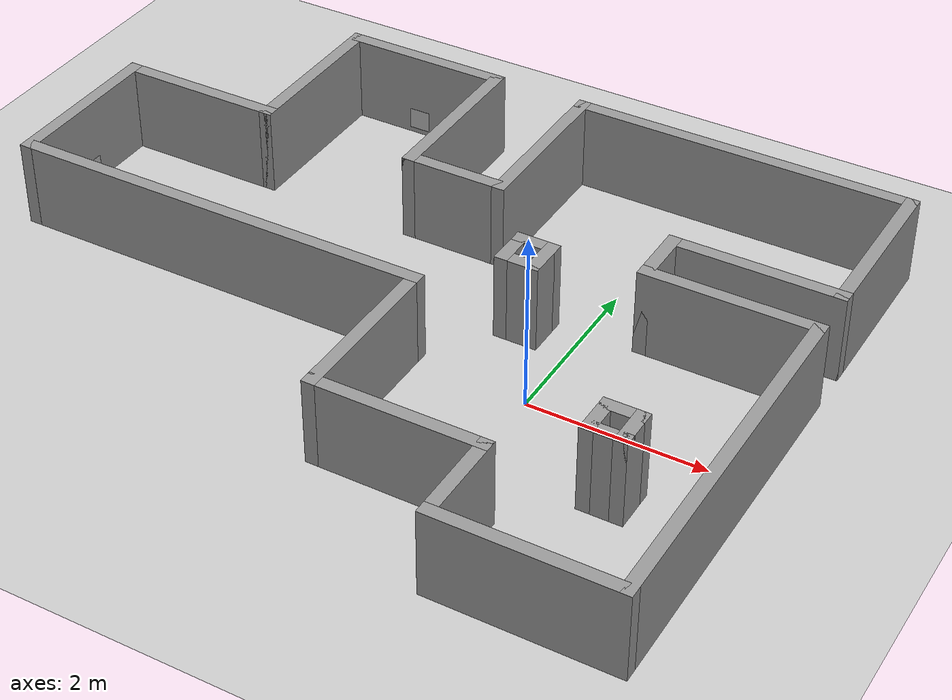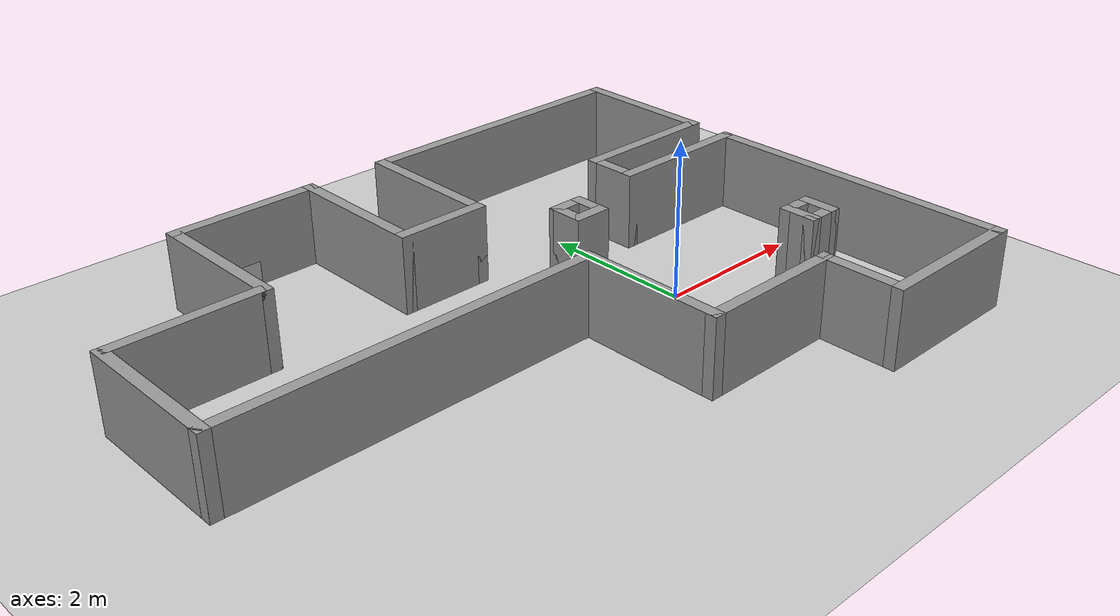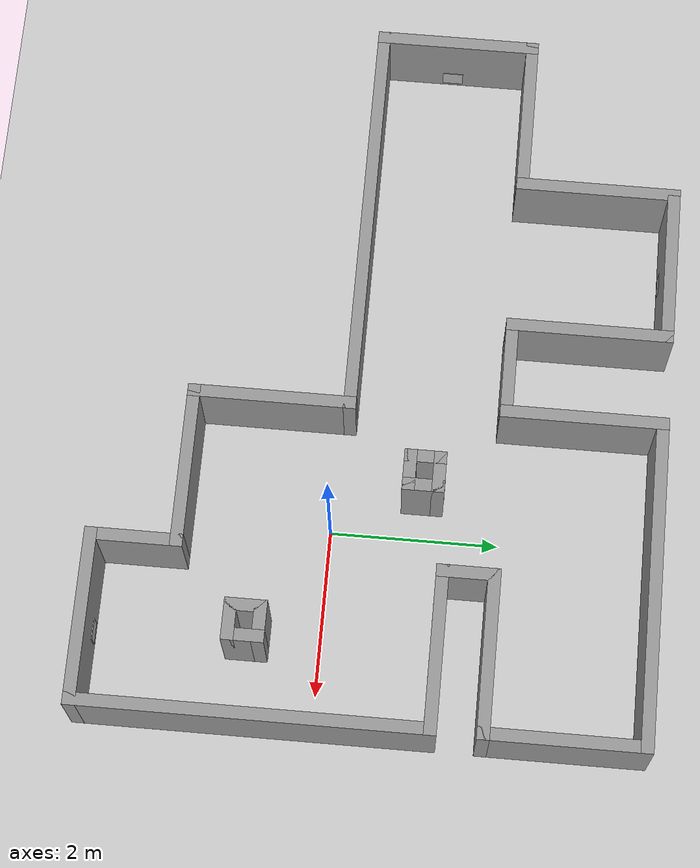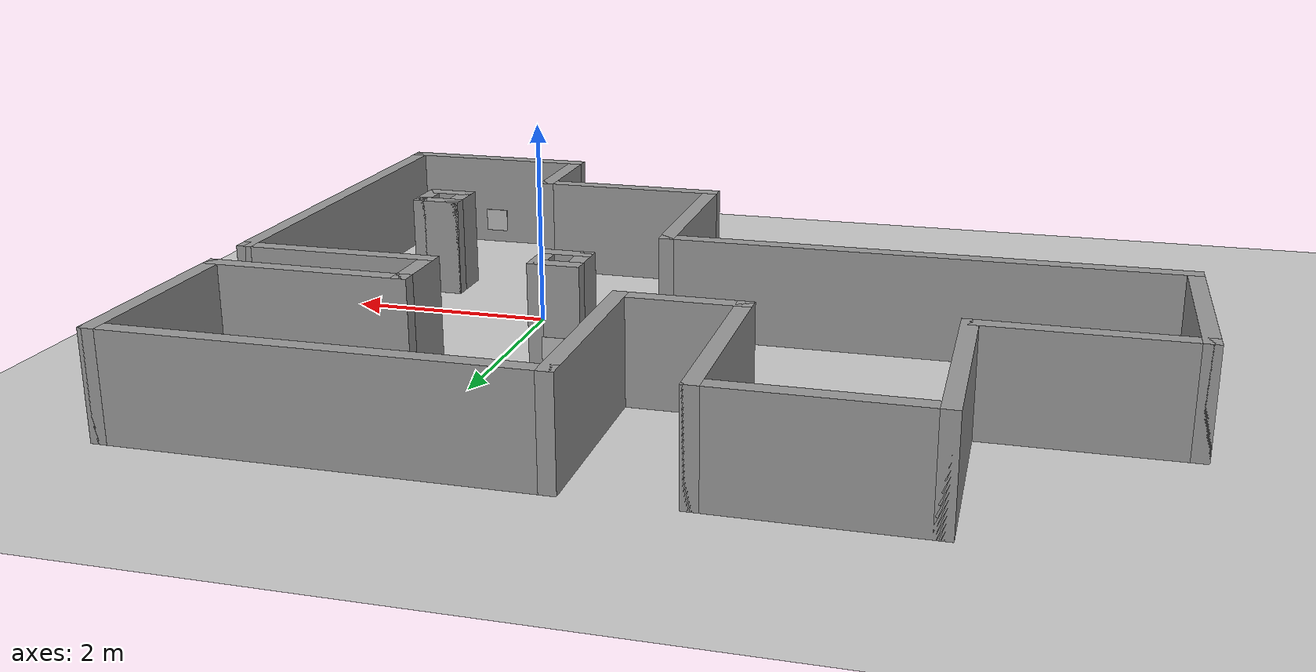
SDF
<sdf version="1.7">
 <world name="default">
  <model name="ground_plane">
   <static>1</static>
   <link name="link">
    <collision name="collision">
     <geometry><plane><normal>0 0 1</normal><size>100 100</size></plane></geometry>
     <surface><friction><ode><mu>100</mu><mu2>50</mu2></ode></friction></surface>
    </collision>
    <visual name="visual">
     <cast_shadows>0</cast_shadows>
     <geometry><plane><normal>0 0 1</normal><size>100 100</size></plane></geometry>
     <material>
      <script><uri>file://media/materials/scripts/gazebo.material</uri><name>Gazebo/Grey</name></script>
     </material>
    </visual>
   </link>
  </model>
  <light name="sun" type="directional">
   <pose>0 0 10 0 -0 0</pose>
   <diffuse>0.8 0.8 0.8 1</diffuse>
   <specular>0.2 0.2 0.2 1</specular>
   <attenuation>
    <range>1000</range>
    <constant>0.9</constant>
    <linear>0.01</linear>
    <quadratic>0.001</quadratic>
   </attenuation>
   <direction>-0.5 0.1 -0.9</direction>
   <spot><inner_angle>0</inner_angle><outer_angle>0</outer_angle><falloff>0</falloff></spot>
  </light>
  <scene><shadows>0</shadows><ambient>0.4 0.4 0.4 1</ambient><background>0.7 0.7 0.7 1</background></scene>
  <physics type="ode">
   <real_time_update_rate>1000</real_time_update_rate>
   <max_step_size>0.001</max_step_size>
   <real_time_factor>1</real_time_factor>
   <ode>
    <solver>
     <type>quick</type>
     <iters>150</iters>
     <precon_iters>0</precon_iters>
     <sor>1.4</sor>
     <use_dynamic_moi_rescaling>1</use_dynamic_moi_rescaling>
    </solver>
    <constraints>
     <cfm>1e-05</cfm>
     <erp>0.2</erp>
     <contact_max_correcting_vel>2000</contact_max_correcting_vel>
     <contact_surface_layer>0.01</contact_surface_layer>
    </constraints>
   </ode>
  </physics>
  <gravity>0 0 -9.8</gravity>
  <magnetic_field>6e-06 2.3e-05 -4.2e-05</magnetic_field>
  <atmosphere type="adiabatic"/>
  <spherical_coordinates>
   <surface_model>EARTH_WGS84</surface_model>
   <latitude_deg>0</latitude_deg>
   <longitude_deg>0</longitude_deg>
   <elevation>0</elevation>
   <heading_deg>0</heading_deg>
  </spherical_coordinates>
  <model name="test_world_2">
   <pose>-1.86586 0.5439 0 0 -0 0</pose>
   <link name="Wall_60">
    <collision name="Wall_60_Collision">
     <geometry><box><size>2 0.15 1</size></box></geometry>
     <pose>0 0 0.5 0 -0 0</pose>
    </collision>
    <visual name="Wall_60_Visual">
     <pose>0 0 0.5 0 -0 0</pose>
     <geometry><box><size>2 0.15 1</size></box></geometry>
     <material>
      <script><uri>file://media/materials/scripts/gazebo.material</uri><name>Gazebo/Grey</name></script>
      <ambient>1 1 1 1</ambient>
     </material>
     <meta><layer>0</layer></meta>
    </visual>
    <pose>1.45 -2.275 0 0 -0 3.14159</pose>
   </link>
   <link name="Wall_61">
    <collision name="Wall_61_Collision">
     <geometry><box><size>2 0.15 1</size></box></geometry>
     <pose>0 0 0.5 0 -0 0</pose>
    </collision>
    <visual name="Wall_61_Visual">
     <pose>0 0 0.5 0 -0 0</pose>
     <geometry><box><size>2 0.15 1</size></box></geometry>
     <material>
      <script><uri>file://media/materials/scripts/gazebo.material</uri><name>Gazebo/Grey</name></script>
      <ambient>1 1 1 1</ambient>
     </material>
     <meta><layer>0</layer></meta>
    </visual>
    <pose>0.525 -1.35 0 0 -0 1.5708</pose>
   </link>
   <link name="Wall_62">
    <collision name="Wall_62_Collision">
     <geometry><box><size>5 0.15 1</size></box></geometry>
     <pose>0 0 0.5 0 -0 0</pose>
    </collision>
    <visual name="Wall_62_Visual">
     <pose>0 0 0.5 0 -0 0</pose>
     <geometry><box><size>5 0.15 1</size></box></geometry>
     <material>
      <script><uri>file://media/materials/scripts/gazebo.material</uri><name>Gazebo/Grey</name></script>
      <ambient>1 1 1 1</ambient>
     </material>
     <meta><layer>0</layer></meta>
    </visual>
    <pose>-1.9 -0.425 0 0 -0 3.14159</pose>
   </link>
   <link name="Wall_63">
    <collision name="Wall_63_Collision">
     <geometry><box><size>2 0.15 1</size></box></geometry>
     <pose>0 0 0.5 0 -0 0</pose>
    </collision>
    <visual name="Wall_63_Visual">
     <pose>0 0 0.5 0 -0 0</pose>
     <geometry><box><size>2 0.15 1</size></box></geometry>
     <material>
      <script><uri>file://media/materials/scripts/gazebo.material</uri><name>Gazebo/Grey</name></script>
      <ambient>1 1 1 1</ambient>
     </material>
     <meta><layer>0</layer></meta>
    </visual>
    <pose>-4.325 0.5 0 0 -0 1.5708</pose>
   </link>
   <link name="Wall_64">
    <collision name="Wall_64_Collision">
     <geometry><box><size>2 0.15 1</size></box></geometry>
     <pose>0 0 0.5 0 -0 0</pose>
    </collision>
    <visual name="Wall_64_Visual">
     <pose>0 0 0.5 0 -0 0</pose>
     <geometry><box><size>2 0.15 1</size></box></geometry>
     <material>
      <script><uri>file://media/materials/scripts/gazebo.material</uri><name>Gazebo/Grey</name></script>
      <ambient>1 1 1 1</ambient>
     </material>
     <meta><layer>0</layer></meta>
    </visual>
    <pose>-3.4 1.425 0 0 -0 0</pose>
   </link>
   <link name="Wall_65">
    <collision name="Wall_65_Collision">
     <geometry><box><size>2 0.15 1</size></box></geometry>
     <pose>0 0 0.5 0 -0 0</pose>
    </collision>
    <visual name="Wall_65_Visual">
     <pose>0 0 0.5 0 -0 0</pose>
     <geometry><box><size>2 0.15 1</size></box></geometry>
     <material>
      <script><uri>file://media/materials/scripts/gazebo.material</uri><name>Gazebo/Grey</name></script>
      <ambient>1 1 1 1</ambient>
     </material>
     <meta><layer>0</layer></meta>
    </visual>
    <pose>-2.475 2.35 0 0 -0 1.5708</pose>
   </link>
   <link name="Wall_66">
    <collision name="Wall_66_Collision">
     <geometry><box><size>2 0.15 1</size></box></geometry>
     <pose>0 0 0.5 0 -0 0</pose>
    </collision>
    <visual name="Wall_66_Visual">
     <pose>0 0 0.5 0 -0 0</pose>
     <geometry><box><size>2 0.15 1</size></box></geometry>
     <material>
      <script><uri>file://media/materials/scripts/gazebo.material</uri><name>Gazebo/Grey</name></script>
      <ambient>1 1 1 1</ambient>
     </material>
     <meta><layer>0</layer></meta>
    </visual>
    <pose>-1.55 3.275 0 0 -0 0</pose>
   </link>
   <link name="Wall_67">
    <collision name="Wall_67_Collision">
     <geometry><box><size>2 0.15 1</size></box></geometry>
     <pose>0 0 0.5 0 -0 0</pose>
    </collision>
    <visual name="Wall_67_Visual">
     <pose>0 0 0.5 0 -0 0</pose>
     <geometry><box><size>2 0.15 1</size></box></geometry>
     <material>
      <script><uri>file://media/materials/scripts/gazebo.material</uri><name>Gazebo/Grey</name></script>
      <ambient>1 1 1 1</ambient>
     </material>
     <meta><layer>0</layer></meta>
    </visual>
    <pose>-0.625 2.35 0 0 -0 -1.5708</pose>
   </link>
   <link name="Wall_68">
    <collision name="Wall_68_Collision">
     <geometry><box><size>1.25 0.15 1</size></box></geometry>
     <pose>0 0 0.5 0 -0 0</pose>
    </collision>
    <visual name="Wall_68_Visual">
     <pose>0 0 0.5 0 -0 0</pose>
     <geometry><box><size>1.25 0.15 1</size></box></geometry>
     <material>
      <script><uri>file://media/materials/scripts/gazebo.material</uri><name>Gazebo/Grey</name></script>
      <ambient>1 1 1 1</ambient>
     </material>
     <meta><layer>0</layer></meta>
    </visual>
    <pose>-0.075 1.425 0 0 -0 0</pose>
   </link>
   <link name="Wall_71">
    <collision name="Wall_71_Collision">
     <geometry><box><size>2 0.15 1</size></box></geometry>
     <pose>0 0 0.5 0 -0 0</pose>
    </collision>
    <visual name="Wall_71_Visual">
     <pose>0 0 0.5 0 -0 0</pose>
     <geometry><box><size>2 0.15 1</size></box></geometry>
     <material>
      <script><uri>file://media/materials/scripts/gazebo.material</uri><name>Gazebo/Grey</name></script>
      <ambient>1 1 1 1</ambient>
     </material>
     <meta><layer>0</layer></meta>
    </visual>
    <pose>0.475 2.35 0 0 -0 1.5708</pose>
   </link>
   <link name="Wall_72">
    <collision name="Wall_72_Collision">
     <geometry><box><size>4 0.15 1</size></box></geometry>
     <pose>0 0 0.5 0 -0 0</pose>
    </collision>
    <visual name="Wall_72_Visual">
     <pose>0 0 0.5 0 -0 0</pose>
     <geometry><box><size>4 0.15 1</size></box></geometry>
     <material>
      <script><uri>file://media/materials/scripts/gazebo.material</uri><name>Gazebo/Grey</name></script>
      <ambient>1 1 1 1</ambient>
     </material>
     <meta><layer>0</layer></meta>
    </visual>
    <pose>2.4 3.275 0 0 -0 0</pose>
   </link>
   <link name="Wall_73">
    <collision name="Wall_73_Collision">
     <geometry><box><size>2 0.15 1</size></box></geometry>
     <pose>0 0 0.5 0 -0 0</pose>
    </collision>
    <visual name="Wall_73_Visual">
     <pose>0 0 0.5 0 -0 0</pose>
     <geometry><box><size>2 0.15 1</size></box></geometry>
     <material>
      <script><uri>file://media/materials/scripts/gazebo.material</uri><name>Gazebo/Grey</name></script>
      <ambient>1 1 1 1</ambient>
     </material>
     <meta><layer>0</layer></meta>
    </visual>
    <pose>4.325 2.35 0 0 -0 -1.5708</pose>
   </link>
   <link name="Wall_74">
    <collision name="Wall_74_Collision">
     <geometry><box><size>2 0.15 1</size></box></geometry>
     <pose>0 0 0.5 0 -0 0</pose>
    </collision>
    <visual name="Wall_74_Visual">
     <pose>0 0 0.5 0 -0 0</pose>
     <geometry><box><size>2 0.15 1</size></box></geometry>
     <material>
      <script><uri>file://media/materials/scripts/gazebo.material</uri><name>Gazebo/Grey</name></script>
      <ambient>1 1 1 1</ambient>
     </material>
     <meta><layer>0</layer></meta>
    </visual>
    <pose>3.4 1.425 0 0 -0 3.14159</pose>
   </link>
   <link name="Wall_75">
    <collision name="Wall_75_Collision">
     <geometry><box><size>0.75 0.15 1</size></box></geometry>
     <pose>0 0 0.5 0 -0 0</pose>
    </collision>
    <visual name="Wall_75_Visual">
     <pose>0 0 0.5 0 -0 0</pose>
     <geometry><box><size>0.75 0.15 1</size></box></geometry>
     <material>
      <script><uri>file://media/materials/scripts/gazebo.material</uri><name>Gazebo/Grey</name></script>
      <ambient>1 1 1 1</ambient>
     </material>
     <meta><layer>0</layer></meta>
    </visual>
    <pose>2.475 1.125 0 0 -0 -1.5708</pose>
   </link>
   <link name="Wall_76">
    <collision name="Wall_76_Collision">
     <geometry><box><size>2 0.15 1</size></box></geometry>
     <pose>0 0 0.5 0 -0 0</pose>
    </collision>
    <visual name="Wall_76_Visual">
     <pose>0 0 0.5 0 -0 0</pose>
     <geometry><box><size>2 0.15 1</size></box></geometry>
     <material>
      <script><uri>file://media/materials/scripts/gazebo.material</uri><name>Gazebo/Grey</name></script>
      <ambient>1 1 1 1</ambient>
     </material>
     <meta><layer>0</layer></meta>
    </visual>
    <pose>3.4 0.825 0 0 -0 0</pose>
   </link>
   <link name="Wall_77">
    <collision name="Wall_77_Collision">
     <geometry><box><size>4.25 0.15 1</size></box></geometry>
     <pose>0 0 0.5 0 -0 0</pose>
    </collision>
    <visual name="Wall_77_Visual">
     <pose>0 0 0.5 0 -0 0</pose>
     <geometry><box><size>4.25 0.15 1</size></box></geometry>
     <material>
      <script><uri>file://media/materials/scripts/gazebo.material</uri><name>Gazebo/Grey</name></script>
      <ambient>1 1 1 1</ambient>
     </material>
     <meta><layer>0</layer></meta>
    </visual>
    <pose>4.325 -1.225 0 0 -0 -1.5708</pose>
   </link>
   <link name="Wall_82">
    <collision name="Wall_82_Collision">
     <geometry><box><size>1 0.15 1</size></box></geometry>
     <pose>0 0 0.5 0 -0 0</pose>
    </collision>
    <visual name="Wall_82_Visual">
     <pose>0 0 0.5 0 -0 0</pose>
     <geometry><box><size>1 0.15 1</size></box></geometry>
     <material>
      <script><uri>file://media/materials/scripts/gazebo.material</uri><name>Gazebo/Grey</name></script>
      <ambient>1 1 1 1</ambient>
     </material>
     <meta><layer>0</layer></meta>
    </visual>
    <pose>2.375 -2.7 0 0 -0 -1.5708</pose>
   </link>
   <link name="Wall_85">
    <collision name="Wall_85_Collision">
     <geometry><box><size>2.1 0.15 1</size></box></geometry>
     <pose>0 0 0.5 0 -0 0</pose>
    </collision>
    <visual name="Wall_85_Visual">
     <pose>0 0 0.5 0 -0 0</pose>
     <geometry><box><size>2.1 0.15 1</size></box></geometry>
     <material>
      <script><uri>file://media/materials/scripts/gazebo.material</uri><name>Gazebo/Grey</name></script>
      <ambient>1 1 1 1</ambient>
     </material>
     <meta><layer>0</layer></meta>
    </visual>
    <pose>3.35 -3.275 0 0 -0 3.14159</pose>
   </link>
   <link name="Wall_87">
    <collision name="Wall_87_Collision">
     <geometry><box><size>0.5 0.15 1</size></box></geometry>
     <pose>0 0 0.5 0 -0 0</pose>
    </collision>
    <visual name="Wall_87_Visual">
     <pose>0 0 0.5 0 -0 0</pose>
     <geometry><box><size>0.5 0.15 1</size></box></geometry>
     <material>
      <script><uri>file://media/materials/scripts/gazebo.material</uri><name>Gazebo/Grey</name></script>
      <ambient>1 1 1 1</ambient>
     </material>
     <meta><layer>0</layer></meta>
    </visual>
    <pose>3.075 -1.395 0 0 -0 -1.5708</pose>
   </link>
   <link name="Wall_88">
    <collision name="Wall_88_Collision">
     <geometry><box><size>0.5 0.15 1</size></box></geometry>
     <pose>0 0 0.5 0 -0 0</pose>
    </collision>
    <visual name="Wall_88_Visual">
     <pose>0 0 0.5 0 -0 0</pose>
     <geometry><box><size>0.5 0.15 1</size></box></geometry>
     <material>
      <script><uri>file://media/materials/scripts/gazebo.material</uri><name>Gazebo/Grey</name></script>
      <ambient>1 1 1 1</ambient>
     </material>
     <meta><layer>0</layer></meta>
    </visual>
    <pose>3.25 -1.57 0 0 -0 0</pose>
   </link>
   <link name="Wall_89">
    <collision name="Wall_89_Collision">
     <geometry><box><size>0.5 0.15 1</size></box></geometry>
     <pose>0 0 0.5 0 -0 0</pose>
    </collision>
    <visual name="Wall_89_Visual">
     <pose>0 0 0.5 0 -0 0</pose>
     <geometry><box><size>0.5 0.15 1</size></box></geometry>
     <material>
      <script><uri>file://media/materials/scripts/gazebo.material</uri><name>Gazebo/Grey</name></script>
      <ambient>1 1 1 1</ambient>
     </material>
     <meta><layer>0</layer></meta>
    </visual>
    <pose>3.425 -1.395 0 0 -0 1.5708</pose>
   </link>
   <link name="Wall_90">
    <collision name="Wall_90_Collision">
     <geometry><box><size>0.5 0.15 1</size></box></geometry>
     <pose>0 0 0.5 0 -0 0</pose>
    </collision>
    <visual name="Wall_90_Visual">
     <pose>0 0 0.5 0 -0 0</pose>
     <geometry><box><size>0.5 0.15 1</size></box></geometry>
     <material>
      <script><uri>file://media/materials/scripts/gazebo.material</uri><name>Gazebo/Grey</name></script>
      <ambient>1 1 1 1</ambient>
     </material>
     <meta><layer>0</layer></meta>
    </visual>
    <pose>3.25 -1.22 0 0 -0 3.14159</pose>
   </link>
   <link name="Wall_92">
    <collision name="Wall_92_Collision">
     <geometry><box><size>0.5 0.15 1</size></box></geometry>
     <pose>0 0 0.5 0 -0 0</pose>
    </collision>
    <visual name="Wall_92_Visual">
     <pose>0 0 0.5 0 -0 0</pose>
     <geometry><box><size>0.5 0.15 1</size></box></geometry>
     <material>
      <script><uri>file://media/materials/scripts/gazebo.material</uri><name>Gazebo/Grey</name></script>
      <ambient>1 1 1 1</ambient>
     </material>
     <meta><layer>0</layer></meta>
    </visual>
    <pose>1.116 0.521 0 0 -0 -1.5708</pose>
   </link>
   <link name="Wall_93">
    <collision name="Wall_93_Collision">
     <geometry><box><size>0.5 0.15 1</size></box></geometry>
     <pose>0 0 0.5 0 -0 0</pose>
    </collision>
    <visual name="Wall_93_Visual">
     <pose>0 0 0.5 0 -0 0</pose>
     <geometry><box><size>0.5 0.15 1</size></box></geometry>
     <material>
      <script><uri>file://media/materials/scripts/gazebo.material</uri><name>Gazebo/Grey</name></script>
      <ambient>1 1 1 1</ambient>
     </material>
     <meta><layer>0</layer></meta>
    </visual>
    <pose>1.291 0.346 0 0 -0 0</pose>
   </link>
   <link name="Wall_94">
    <collision name="Wall_94_Collision">
     <geometry><box><size>0.5 0.15 1</size></box></geometry>
     <pose>0 0 0.5 0 -0 0</pose>
    </collision>
    <visual name="Wall_94_Visual">
     <pose>0 0 0.5 0 -0 0</pose>
     <geometry><box><size>0.5 0.15 1</size></box></geometry>
     <material>
      <script><uri>file://media/materials/scripts/gazebo.material</uri><name>Gazebo/Grey</name></script>
      <ambient>1 1 1 1</ambient>
     </material>
     <meta><layer>0</layer></meta>
    </visual>
    <pose>1.466 0.521 0 0 -0 1.5708</pose>
   </link>
   <link name="Wall_95">
    <collision name="Wall_95_Collision">
     <geometry><box><size>0.5 0.15 1</size></box></geometry>
     <pose>0 0 0.5 0 -0 0</pose>
    </collision>
    <visual name="Wall_95_Visual">
     <pose>0 0 0.5 0 -0 0</pose>
     <geometry><box><size>0.5 0.15 1</size></box></geometry>
     <material>
      <script><uri>file://media/materials/scripts/gazebo.material</uri><name>Gazebo/Grey</name></script>
      <ambient>1 1 1 1</ambient>
     </material>
     <meta><layer>0</layer></meta>
    </visual>
    <pose>1.291 0.696 0 0 -0 3.14159</pose>
   </link>
   <static>1</static>
  </model>
  <model name="qr_code_1">
   <static>1</static>
   <link name="link">
    <visual name="visual">
     <cast_shadows>0</cast_shadows>
     <geometry><box><size>0.01 0.25 0.25</size></box></geometry>
     <material>
      <script>
       <uri>model://qr_code_1/materials/scripts</uri>
       <uri>model://qr_code_1/materials/textures</uri>
       <name>QRCode1/Image</name>
      </script>
     </material>
    </visual>
   </link>
   <pose>1.49396 -2.64982 0.262742 0 -0 1.5708</pose>
  </model>
  <model name="qr_code_2">
   <static>1</static>
   <link name="link">
    <visual name="visual">
     <cast_shadows>0</cast_shadows>
     <geometry><box><size>0.01 0.25 0.25</size></box></geometry>
     <material>
      <script>
       <uri>model://qr_code_2/materials/scripts</uri>
       <uri>model://qr_code_2/materials/textures</uri>
       <name>QRCode2/Image</name>
      </script>
     </material>
    </visual>
   </link>
   <pose>-6.11237 1.00135 0.180876 0 -0 0</pose>
  </model>
  <model name="qr_code_3">
   <static>1</static>
   <link name="link">
    <visual name="visual">
     <cast_shadows>0</cast_shadows>
     <geometry><box><size>0.01 0.25 0.25</size></box></geometry>
     <material>
      <script>
       <uri>model://qr_code_3/materials/scripts</uri>
       <uri>model://qr_code_3/materials/textures</uri>
       <name>QRCode3/Image</name>
      </script>
     </material>
    </visual>
   </link>
   <pose>-3.46528 3.74855 0.181818 0 0 -1.5708</pose>
  </model>
  <model name="qr_code_4">
   <static>1</static>
   <link name="link">
    <visual name="visual">
     <cast_shadows>0</cast_shadows>
     <geometry><box><size>0.01 0.25 0.25</size></box></geometry>
     <material>
      <script>
       <uri>model://qr_code_4/materials/scripts</uri>
       <uri>model://qr_code_4/materials/textures</uri>
       <name>QRCode4/Image</name>
      </script>
     </material>
    </visual>
   </link>
   <pose>-0.57982 1.31324 0.18232 0 0 -1.5708</pose>
  </model>
  <model name="qr_code_5">
   <static>1</static>
   <link name="link">
    <visual name="visual">
     <cast_shadows>0</cast_shadows>
     <geometry><box><size>0.01 0.25 0.25</size></box></geometry>
     <material>
      <script>
       <uri>model://qr_code_5/materials/scripts</uri>
       <uri>model://qr_code_5/materials/textures</uri>
       <name>QRCode5/Image</name>
      </script>
     </material>
    </visual>
   </link>
   <pose>2.3794 2.87027 0.218154 0 -0 0</pose>
  </model>
 </world>
</sdf>
